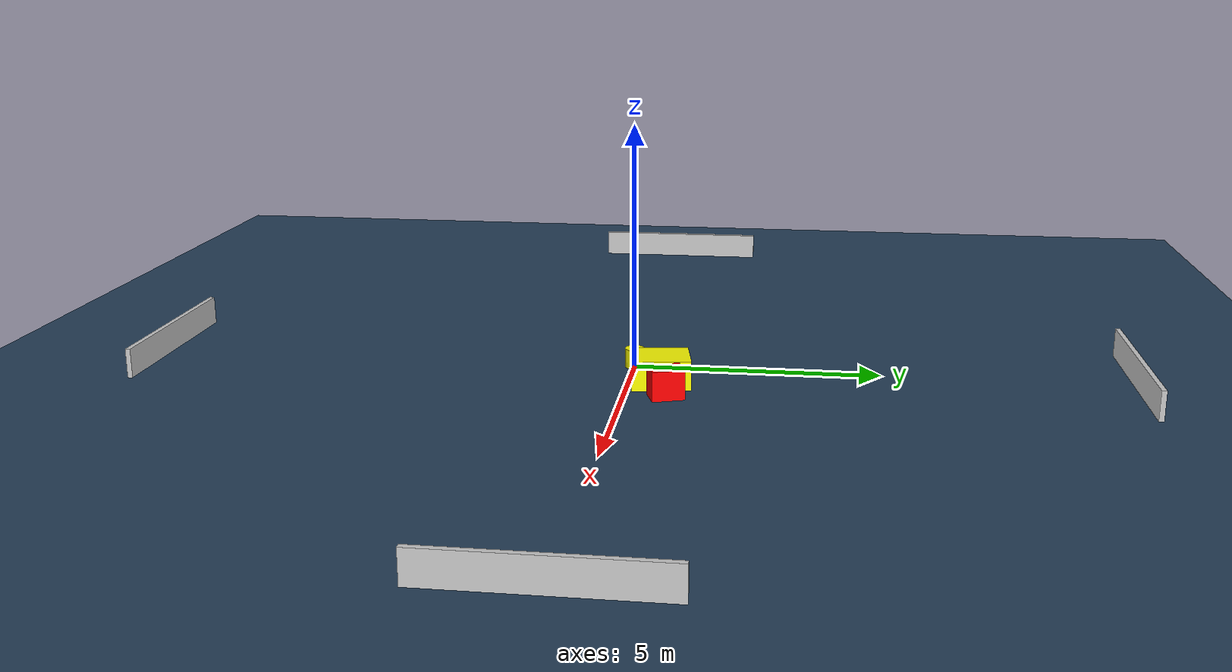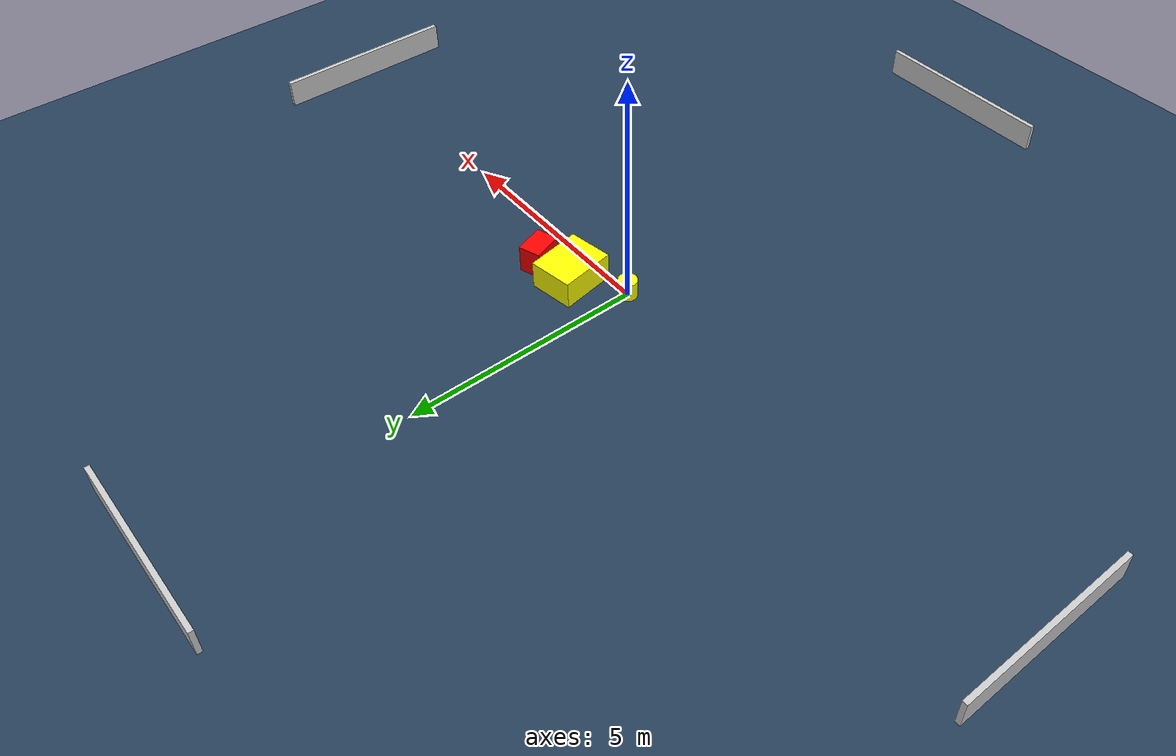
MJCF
<?xml version="1.0" ?>
<mujoco model="generated_environment">
  <option timestep="0.01" integrator="RK4" cone="elliptic"/>
  <default>
    <geom density="1"/>
  </default>
  <asset>
    <texture builtin="gradient" height="3072" name="skybox" rgb1="0.3 0.5 0.7" rgb2="0 0 0" type="skybox" width="512"/>
    <texture builtin="checker" height="300" name="groundplane" rgb1="0.2 0.3 0.4" rgb2="0.1 0.2 0.3" type="2d" width="300"/>
    <material name="groundplane" reflectance="0.2" texrepeat="5 5" texture="groundplane"/>
  </asset>
  <worldbody>
    <light dir="0 0 -1" directional="true" pos="0 0 1.5"/>
    <geom condim="3" friction="0.5 0.005 0.001" material="groundplane" name="floor" pos="0 0 0" size="0 0 0.05" type="plane"/>
    <body name="walls">
      <geom name="wall_1" condim="4" pos="-10.0 0.0 0.3" rgba="0.800000011920929 0.800000011920929 0.800000011920929 1.0" size="0.05 2.0 0.3" type="box"/>
      <geom name="wall_2" condim="4" pos="10.0 0.0 0.3" rgba="0.800000011920929 0.800000011920929 0.800000011920929 1.0" size="0.05 2.0 0.3" type="box"/>
      <geom name="wall_3" condim="4" pos="0.0 -10.0 0.3" rgba="0.800000011920929 0.800000011920929 0.800000011920929 1.0" size="2.0 0.05 0.3" type="box"/>
      <geom name="wall_4" condim="4" pos="0.0 10.0 0.3" rgba="0.800000011920929 0.800000011920929 0.800000011920929 1.0" size="2.0 0.05 0.3" type="box"/>
    </body>
    <body name="robot">
      <joint name="joint_x" type="slide" pos="0 0 0" axis="1 0 0"/>
      <joint name="joint_y" type="slide" pos="0 0 0" axis="0 1 0"/>
      <geom name="robot" type="cylinder" pos="0.0 0.0 0.2" size="0.2 0.2 0.0" mass="5.0" friction="1.0 0.005 0.0001" condim="4" rgba="1.0 1.0 0.0 1.0"/>
    </body>
    <body name="obstacle_1_movable">
      <geom name="obstacle_1_movable" condim="4" pos="1.0086820451750322 0.6329623885140502 0.3" euler="0 0 9.372724420801593" friction="0.0 0.005 0.001" rgba="1.0 1.0 0.0 1.0" size="0.4762936480352538 0.5872035931357911 0.3" type="box" mass="0.1"/>
      <joint type="free"/>
    </body>
    <body name="obstacle_2_static">
      <geom name="obstacle_2_static" condim="4" pos="1.8074405733314856 0.830534084403716 0.3" euler="0 0 199.13946543891993" friction="0.0 0.005 0.001" rgba="1.0 0.0 0.0 1.0" size="0.24024522027133804 0.32472997463528974 0.3" type="box"/>
    </body>
  </worldbody>
  <actuator>
    <motor name="actuator_x" joint="joint_x" gear="1" ctrlrange="-1 1"/>
    <motor name="actuator_y" joint="joint_y" gear="1" ctrlrange="-1 1"/>
  </actuator>
</mujoco>
